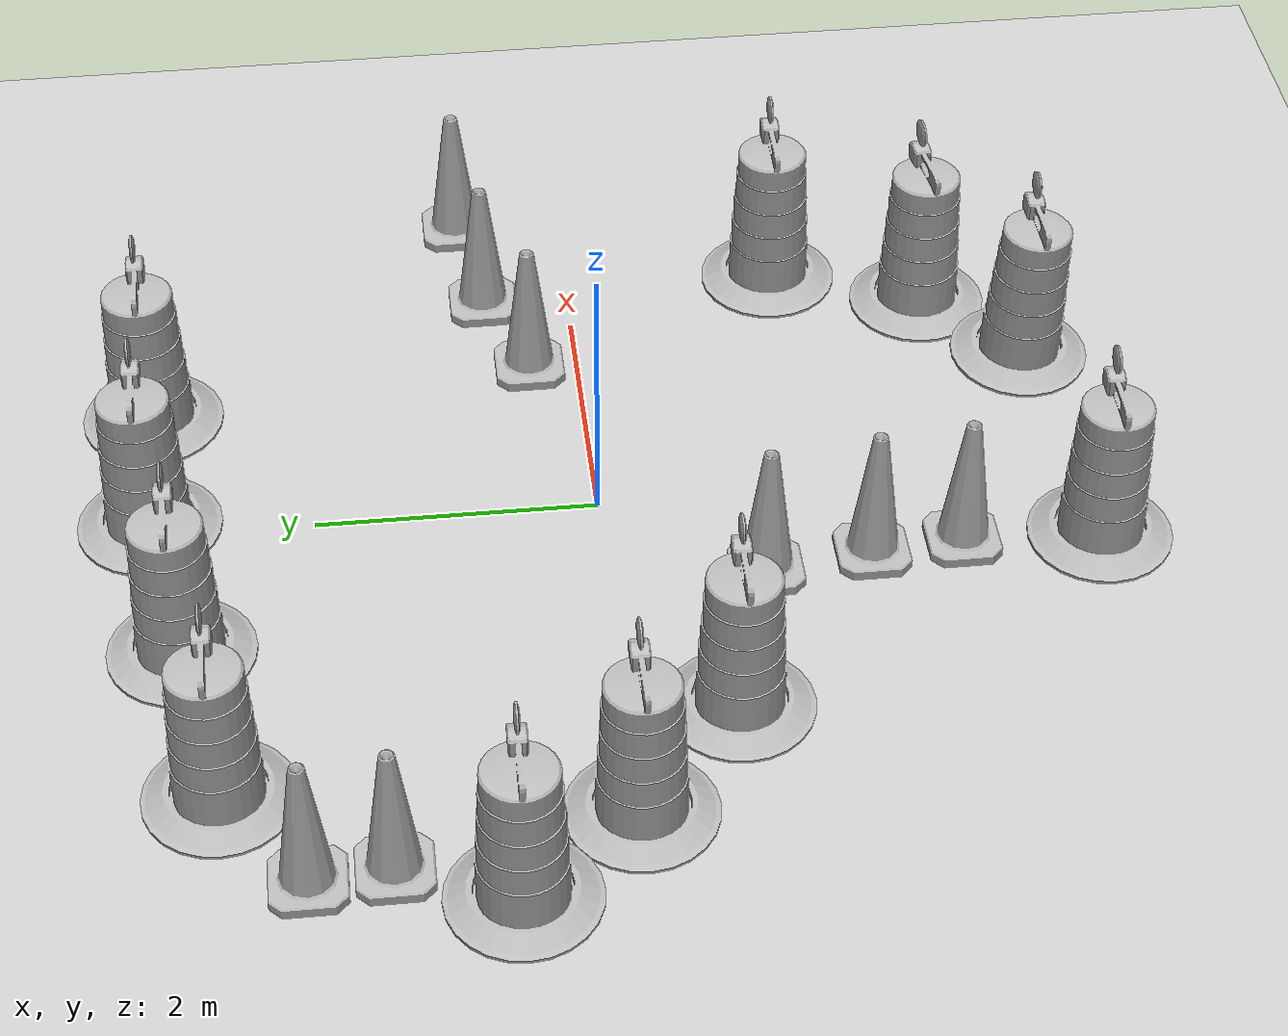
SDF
<sdf version="1.7">
 <world name="default">
  <light name="sun" type="directional">
   <pose>0 0 10 0 -0 0</pose>
   <diffuse>0.8 0.8 0.8 1</diffuse>
   <specular>0.2 0.2 0.2 1</specular>
   <attenuation>
    <range>1000</range>
    <constant>0.9</constant>
    <linear>0.01</linear>
    <quadratic>0.001</quadratic>
   </attenuation>
   <direction>-0.5 0.1 -0.9</direction>
   <spot><inner_angle>0</inner_angle><outer_angle>0</outer_angle><falloff>0</falloff></spot>
  </light>
  <model name="ground_plane">
   <static>1</static>
   <link name="link">
    <collision name="collision">
     <geometry><plane><normal>0 0 1</normal><size>100 100</size></plane></geometry>
     <surface>
      <contact><collide_bitmask>65535</collide_bitmask></contact>
      <friction><ode><mu>100</mu><mu2>50</mu2></ode></friction>
     </surface>
    </collision>
    <visual name="visual">
     <cast_shadows>0</cast_shadows>
     <geometry><plane><normal>0 0 1</normal><size>100 100</size></plane></geometry>
     <material>
      <script><uri>file://media/materials/scripts/gazebo.material</uri><name>Gazebo/Grey</name></script>
     </material>
    </visual>
   </link>
  </model>
  <gravity>0 0 -9.8</gravity>
  <magnetic_field>6e-06 2.3e-05 -4.2e-05</magnetic_field>
  <atmosphere type="adiabatic"/>
  <physics type="ode">
   <max_step_size>0.001</max_step_size>
   <real_time_factor>1</real_time_factor>
   <real_time_update_rate>1000</real_time_update_rate>
  </physics>
  <scene><ambient>0.4 0.4 0.4 1</ambient><background>0.7 0.7 0.7 1</background><shadows>1</shadows></scene>
  <spherical_coordinates>
   <surface_model>EARTH_WGS84</surface_model>
   <latitude_deg>0</latitude_deg>
   <longitude_deg>0</longitude_deg>
   <elevation>0</elevation>
   <heading_deg>0</heading_deg>
  </spherical_coordinates>
  <model name="Construction Cone">
   <link name="link">
    <collision name="collision">
     <geometry>
      <mesh><scale>10 10 10</scale><uri>model://construction_cone/meshes/construction_cone.dae</uri></mesh>
     </geometry>
    </collision>
    <visual name="visual">
     <geometry>
      <mesh><scale>10 10 10</scale><uri>model://construction_cone/meshes/construction_cone.dae</uri></mesh>
     </geometry>
    </visual>
    <inertial>
     <inertia><ixx>1</ixx><ixy>0</ixy><ixz>0</ixz><iyy>1</iyy><iyz>0</iyz><izz>1</izz></inertia>
     <mass>1</mass>
    </inertial>
   </link>
   <pose>-0.788301 -1.08971 -1e-05 -0 -0 -0</pose>
  </model>
  <model name="Construction Cone_0">
   <link name="link">
    <collision name="collision">
     <geometry>
      <mesh><scale>10 10 10</scale><uri>model://construction_cone/meshes/construction_cone.dae</uri></mesh>
     </geometry>
    </collision>
    <visual name="visual">
     <geometry>
      <mesh><scale>10 10 10</scale><uri>model://construction_cone/meshes/construction_cone.dae</uri></mesh>
     </geometry>
    </visual>
    <inertial>
     <inertia><ixx>1</ixx><ixy>0</ixy><ixz>0</ixz><iyy>1</iyy><iyz>0</iyz><izz>1</izz></inertia>
     <mass>1</mass>
    </inertial>
   </link>
   <pose>-0.695784 -1.84748 -0 0 -0 0</pose>
  </model>
  <model name="Construction Cone_1">
   <link name="link">
    <collision name="collision">
     <geometry>
      <mesh><scale>10 10 10</scale><uri>model://construction_cone/meshes/construction_cone.dae</uri></mesh>
     </geometry>
    </collision>
    <visual name="visual">
     <geometry>
      <mesh><scale>10 10 10</scale><uri>model://construction_cone/meshes/construction_cone.dae</uri></mesh>
     </geometry>
    </visual>
    <inertial>
     <inertia><ixx>1</ixx><ixy>0</ixy><ixz>0</ixz><iyy>1</iyy><iyz>0</iyz><izz>1</izz></inertia>
     <mass>1</mass>
    </inertial>
   </link>
   <pose>-0.643232 -2.4954 0 -0 -0 -0</pose>
  </model>
  <model name="Construction Barrel">
   <link name="link">
    <inertial>
     <pose>0 0 0.4 0 -0 0</pose>
     <mass>500</mass>
     <inertia><ixx>51.2096</ixx><iyy>51.2096</iyy><izz>25</izz><ixy>0</ixy><ixz>0</ixz><iyz>0</iyz></inertia>
    </inertial>
    <collision name="collision">
     <geometry><mesh><uri>model://construction_barrel/meshes/construction_barrel.dae</uri></mesh></geometry>
    </collision>
    <visual name="visual">
     <geometry><mesh><uri>model://construction_barrel/meshes/construction_barrel.dae</uri></mesh></geometry>
    </visual>
   </link>
   <pose>-2.02949 -0.731686 -4e-06 -5e-06 -7e-06 -2.6e-05</pose>
  </model>
  <model name="Construction Barrel_0">
   <link name="link">
    <inertial>
     <pose>0 0 0.4 0 -0 0</pose>
     <mass>500</mass>
     <inertia><ixx>51.2096</ixx><iyy>51.2096</iyy><izz>25</izz><ixy>0</ixy><ixz>0</ixz><iyz>0</iyz></inertia>
    </inertial>
    <collision name="collision">
     <geometry><mesh><uri>model://construction_barrel/meshes/construction_barrel.dae</uri></mesh></geometry>
    </collision>
    <visual name="visual">
     <geometry><mesh><uri>model://construction_barrel/meshes/construction_barrel.dae</uri></mesh></geometry>
    </visual>
   </link>
   <pose>-2.87499 0.014477 -2e-06 -7e-06 4e-06 0.008483</pose>
  </model>
  <model name="Construction Barrel_1">
   <link name="link">
    <inertial>
     <pose>0 0 0.4 0 -0 0</pose>
     <mass>500</mass>
     <inertia><ixx>51.2096</ixx><iyy>51.2096</iyy><izz>25</izz><ixy>0</ixy><ixz>0</ixz><iyz>0</iyz></inertia>
    </inertial>
    <collision name="collision">
     <geometry><mesh><uri>model://construction_barrel/meshes/construction_barrel.dae</uri></mesh></geometry>
    </collision>
    <visual name="visual">
     <geometry><mesh><uri>model://construction_barrel/meshes/construction_barrel.dae</uri></mesh></geometry>
    </visual>
   </link>
   <pose>-3.48958 0.819425 -1e-06 3e-06 -2e-06 -0.010707</pose>
  </model>
  <model name="Construction Cone_2">
   <link name="link">
    <collision name="collision">
     <geometry>
      <mesh><scale>10 10 10</scale><uri>model://construction_cone/meshes/construction_cone.dae</uri></mesh>
     </geometry>
    </collision>
    <visual name="visual">
     <geometry>
      <mesh><scale>10 10 10</scale><uri>model://construction_cone/meshes/construction_cone.dae</uri></mesh>
     </geometry>
    </visual>
    <inertial>
     <inertia><ixx>1</ixx><ixy>0</ixy><ixz>0</ixz><iyy>1</iyy><iyz>0</iyz><izz>1</izz></inertia>
     <mass>1</mass>
    </inertial>
   </link>
   <pose>-3.20139 1.59905 -0 0 -0 0</pose>
  </model>
  <model name="Construction Cone_3">
   <link name="link">
    <collision name="collision">
     <geometry>
      <mesh><scale>10 10 10</scale><uri>model://construction_cone/meshes/construction_cone.dae</uri></mesh>
     </geometry>
    </collision>
    <visual name="visual">
     <geometry>
      <mesh><scale>10 10 10</scale><uri>model://construction_cone/meshes/construction_cone.dae</uri></mesh>
     </geometry>
    </visual>
    <inertial>
     <inertia><ixx>1</ixx><ixy>0</ixy><ixz>0</ixz><iyy>1</iyy><iyz>0</iyz><izz>1</izz></inertia>
     <mass>1</mass>
    </inertial>
   </link>
   <pose>-3.24513 2.14121 -0 1e-06 -0 0</pose>
  </model>
  <model name="Construction Barrel_2">
   <link name="link">
    <inertial>
     <pose>0 0 0.4 0 -0 0</pose>
     <mass>500</mass>
     <inertia><ixx>51.2096</ixx><iyy>51.2096</iyy><izz>25</izz><ixy>0</ixy><ixz>0</ixz><iyz>0</iyz></inertia>
    </inertial>
    <collision name="collision">
     <geometry><mesh><uri>model://construction_barrel/meshes/construction_barrel.dae</uri></mesh></geometry>
    </collision>
    <visual name="visual">
     <geometry><mesh><uri>model://construction_barrel/meshes/construction_barrel.dae</uri></mesh></geometry>
    </visual>
   </link>
   <pose>-2.46734 2.68234 -4e-06 -5e-06 -7e-06 -2e-05</pose>
  </model>
  <model name="Construction Barrel_3">
   <link name="link">
    <inertial>
     <pose>0 0 0.4 0 -0 0</pose>
     <mass>500</mass>
     <inertia><ixx>51.2096</ixx><iyy>51.2096</iyy><izz>25</izz><ixy>0</ixy><ixz>0</ixz><iyz>0</iyz></inertia>
    </inertial>
    <collision name="collision">
     <geometry><mesh><uri>model://construction_barrel/meshes/construction_barrel.dae</uri></mesh></geometry>
    </collision>
    <visual name="visual">
     <geometry><mesh><uri>model://construction_barrel/meshes/construction_barrel.dae</uri></mesh></geometry>
    </visual>
   </link>
   <pose>-1.14658 2.92767 -1e-06 0 4e-06 -1.8e-05</pose>
  </model>
  <model name="Construction Barrel_4">
   <link name="link">
    <inertial>
     <pose>0 0 0.4 0 -0 0</pose>
     <mass>500</mass>
     <inertia><ixx>51.2096</ixx><iyy>51.2096</iyy><izz>25</izz><ixy>0</ixy><ixz>0</ixz><iyz>0</iyz></inertia>
    </inertial>
    <collision name="collision">
     <geometry><mesh><uri>model://construction_barrel/meshes/construction_barrel.dae</uri></mesh></geometry>
    </collision>
    <visual name="visual">
     <geometry><mesh><uri>model://construction_barrel/meshes/construction_barrel.dae</uri></mesh></geometry>
    </visual>
   </link>
   <pose>0.119945 3.15433 -2e-06 -7e-06 -4e-06 -1.8e-05</pose>
  </model>
  <model name="Construction Barrel_5">
   <link name="link">
    <inertial>
     <pose>0 0 0.4 0 -0 0</pose>
     <mass>500</mass>
     <inertia><ixx>51.2096</ixx><iyy>51.2096</iyy><izz>25</izz><ixy>0</ixy><ixz>0</ixz><iyz>0</iyz></inertia>
    </inertial>
    <collision name="collision">
     <geometry><mesh><uri>model://construction_barrel/meshes/construction_barrel.dae</uri></mesh></geometry>
    </collision>
    <visual name="visual">
     <geometry><mesh><uri>model://construction_barrel/meshes/construction_barrel.dae</uri></mesh></geometry>
    </visual>
   </link>
   <pose>1.25555 3.14042 -3e-06 -6e-06 -5e-06 -1.5e-05</pose>
  </model>
  <model name="Construction Barrel_6">
   <link name="link">
    <inertial>
     <pose>0 0 0.4 0 -0 0</pose>
     <mass>500</mass>
     <inertia><ixx>51.2096</ixx><iyy>51.2096</iyy><izz>25</izz><ixy>0</ixy><ixz>0</ixz><iyz>0</iyz></inertia>
    </inertial>
    <collision name="collision">
     <geometry><mesh><uri>model://construction_barrel/meshes/construction_barrel.dae</uri></mesh></geometry>
    </collision>
    <visual name="visual">
     <geometry><mesh><uri>model://construction_barrel/meshes/construction_barrel.dae</uri></mesh></geometry>
    </visual>
   </link>
   <pose>-0.66445 -3.47061 -0 0 0 -1.5e-05</pose>
  </model>
  <model name="Construction Barrel_7">
   <link name="link">
    <inertial>
     <pose>0 0 0.4 0 -0 0</pose>
     <mass>500</mass>
     <inertia><ixx>51.2096</ixx><iyy>51.2096</iyy><izz>25</izz><ixy>0</ixy><ixz>0</ixz><iyz>0</iyz></inertia>
    </inertial>
    <collision name="collision">
     <geometry><mesh><uri>model://construction_barrel/meshes/construction_barrel.dae</uri></mesh></geometry>
    </collision>
    <visual name="visual">
     <geometry><mesh><uri>model://construction_barrel/meshes/construction_barrel.dae</uri></mesh></geometry>
    </visual>
   </link>
   <pose>1.31686 -3.30681 0.020964 0.028476 -0.02969 0.046138</pose>
  </model>
  <model name="Construction Barrel_8">
   <link name="link">
    <inertial>
     <pose>0 0 0.4 0 -0 0</pose>
     <mass>500</mass>
     <inertia><ixx>51.2096</ixx><iyy>51.2096</iyy><izz>25</izz><ixy>0</ixy><ixz>0</ixz><iyz>0</iyz></inertia>
    </inertial>
    <collision name="collision">
     <geometry><mesh><uri>model://construction_barrel/meshes/construction_barrel.dae</uri></mesh></geometry>
    </collision>
    <visual name="visual">
     <geometry><mesh><uri>model://construction_barrel/meshes/construction_barrel.dae</uri></mesh></geometry>
    </visual>
   </link>
   <pose>2.02989 -2.66246 -0.000374 0.000402 -0.000736 0.14064</pose>
  </model>
  <model name="Construction Barrel_9">
   <link name="link">
    <inertial>
     <pose>0 0 0.4 0 -0 0</pose>
     <mass>500</mass>
     <inertia><ixx>51.2096</ixx><iyy>51.2096</iyy><izz>25</izz><ixy>0</ixy><ixz>0</ixz><iyz>0</iyz></inertia>
    </inertial>
    <collision name="collision">
     <geometry><mesh><uri>model://construction_barrel/meshes/construction_barrel.dae</uri></mesh></geometry>
    </collision>
    <visual name="visual">
     <geometry><mesh><uri>model://construction_barrel/meshes/construction_barrel.dae</uri></mesh></geometry>
    </visual>
   </link>
   <pose>2.43647 -1.56888 -0 0 0 -9e-06</pose>
  </model>
  <model name="Construction Cone_4">
   <link name="link">
    <collision name="collision">
     <geometry>
      <mesh><scale>10 10 10</scale><uri>model://construction_cone/meshes/construction_cone.dae</uri></mesh>
     </geometry>
    </collision>
    <visual name="visual">
     <geometry>
      <mesh><scale>10 10 10</scale><uri>model://construction_cone/meshes/construction_cone.dae</uri></mesh>
     </geometry>
    </visual>
    <inertial>
     <inertia><ixx>1</ixx><ixy>0</ixy><ixz>0</ixz><iyy>1</iyy><iyz>0</iyz><izz>1</izz></inertia>
     <mass>1</mass>
    </inertial>
   </link>
   <pose>1.54418 0.355438 -0 0 -0 0</pose>
  </model>
  <model name="Construction Cone_5">
   <link name="link">
    <collision name="collision">
     <geometry>
      <mesh><scale>10 10 10</scale><uri>model://construction_cone/meshes/construction_cone.dae</uri></mesh>
     </geometry>
    </collision>
    <visual name="visual">
     <geometry>
      <mesh><scale>10 10 10</scale><uri>model://construction_cone/meshes/construction_cone.dae</uri></mesh>
     </geometry>
    </visual>
    <inertial>
     <inertia><ixx>1</ixx><ixy>0</ixy><ixz>0</ixz><iyy>1</iyy><iyz>0</iyz><izz>1</izz></inertia>
     <mass>1</mass>
    </inertial>
   </link>
   <pose>2.32185 0.64551 -0 0 -0 0</pose>
  </model>
  <model name="Construction Cone_6">
   <link name="link">
    <collision name="collision">
     <geometry>
      <mesh><scale>10 10 10</scale><uri>model://construction_cone/meshes/construction_cone.dae</uri></mesh>
     </geometry>
    </collision>
    <visual name="visual">
     <geometry>
      <mesh><scale>10 10 10</scale><uri>model://construction_cone/meshes/construction_cone.dae</uri></mesh>
     </geometry>
    </visual>
    <inertial>
     <inertia><ixx>1</ixx><ixy>0</ixy><ixz>0</ixz><iyy>1</iyy><iyz>0</iyz><izz>1</izz></inertia>
     <mass>1</mass>
    </inertial>
   </link>
   <pose>3.26652 0.795359 -0 0 -1e-06 0</pose>
  </model>
 </world>
</sdf>
